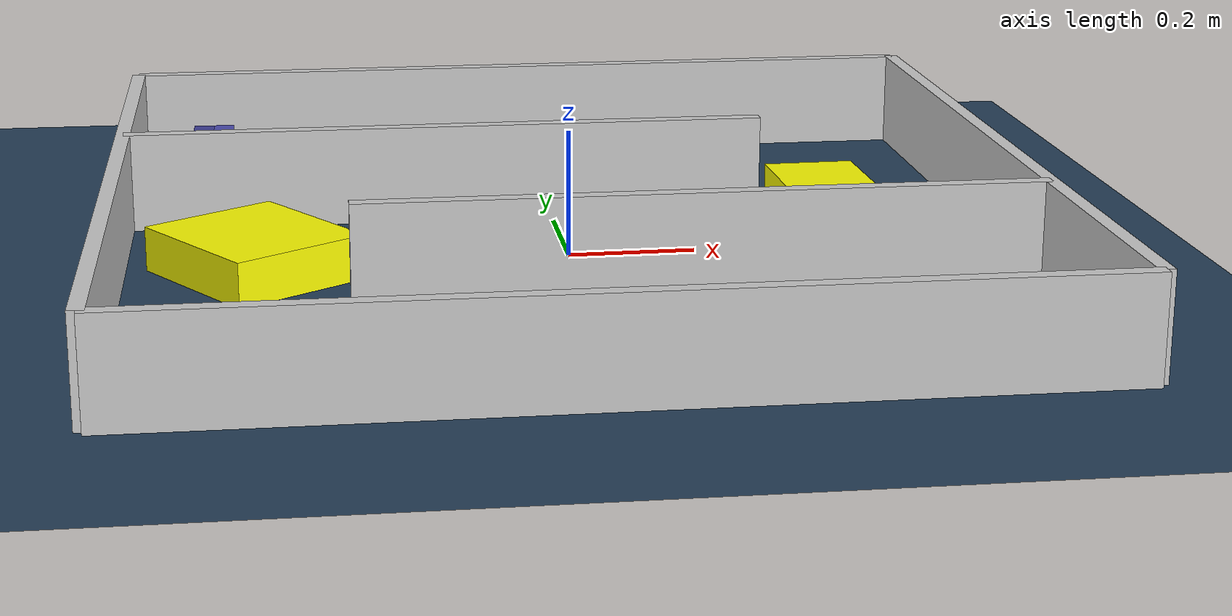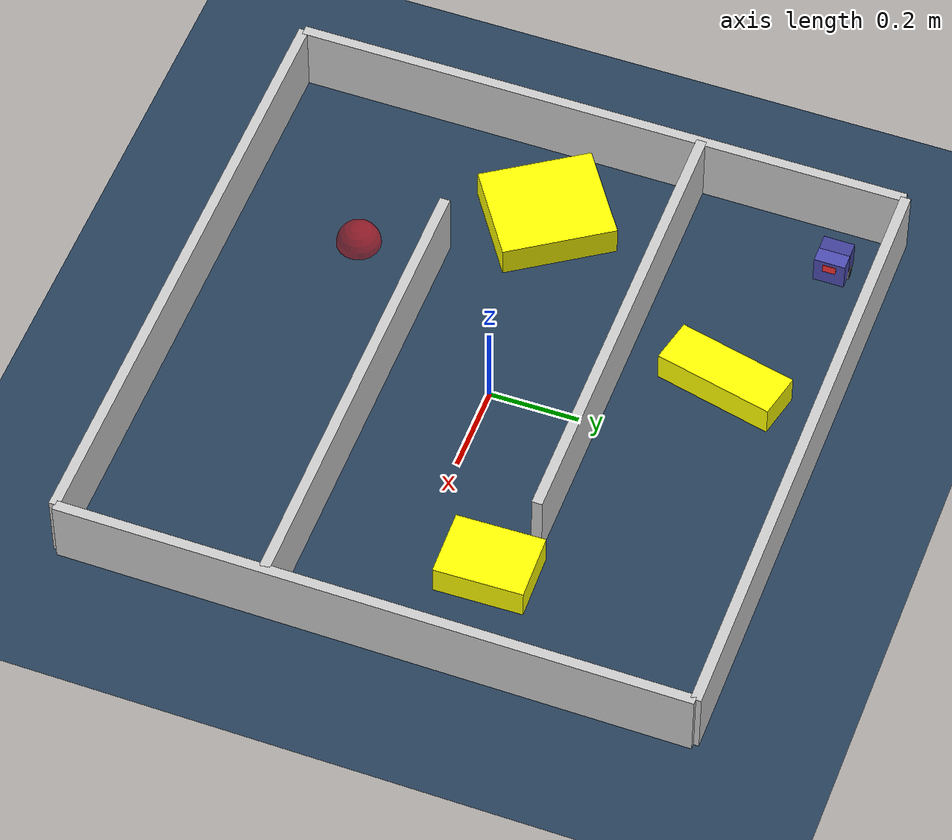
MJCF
<?xml version='1.0' encoding='utf-8'?>
<mujoco model="generated_environment">
  <option timestep="0.002" integrator="implicitfast" cone="elliptic" iterations="100" gravity="0 0 -9.81" />
  <default>
    <geom density="1" />
  </default>
  <asset>
    <texture builtin="gradient" height="3072" rgb1="0.3 0.5 0.7" rgb2="0 0 0" type="skybox" width="512" />
    <texture builtin="checker" height="300" mark="edge" markrgb="0.8 0.8 0.8" name="groundplane" rgb1="0.2 0.3 0.4" rgb2="0.1 0.2 0.3" type="2d" width="300" />
    <material name="groundplane" reflectance="0.2" texrepeat="5 5" texture="groundplane" texuniform="true" />
    <material name="robot" rgba="1.0 1.0 0.0 1.0" />
  </asset>
  <worldbody>
    <light dir="0 0 -1" directional="true" pos="0 0 1.5" />
    <geom condim="4" friction="0.5 0.005 0.001" material="groundplane" name="floor" size="0 0 0.05" type="plane" />
    <body name="walls">
      <geom name="wall_1" condim="4" pos="-0.699000 0.000000 0.080000" rgba="0.800000011920929 0.800000011920929 0.800000011920929 1.0" size="0.011650 0.699000 0.080000" type="box" />
      <geom name="wall_2" condim="4" pos="0.699000 0.000000 0.080000" rgba="0.800000011920929 0.800000011920929 0.800000011920929 1.0" size="0.011650 0.699000 0.080000" type="box" />
      <geom name="wall_3" condim="4" pos="0.000000 -0.699000 0.080000" rgba="0.800000011920929 0.800000011920929 0.800000011920929 1.0" size="0.699000 0.011650 0.080000" type="box" />
      <geom name="wall_4" condim="4" pos="0.000000 0.699000 0.080000" rgba="0.800000011920929 0.800000011920929 0.800000011920929 1.0" size="0.699000 0.011650 0.080000" type="box" />
      <geom name="wall_5" condim="4" pos="0.174750 -0.233000 0.080000" rgba="0.800000011920929 0.800000011920929 0.800000011920929 1.0" size="0.524250 0.011650 0.080000" type="box" />
      <geom name="wall_6" condim="4" pos="-0.174750 0.233000 0.080000" rgba="0.800000011920929 0.800000011920929 0.800000011920929 1.0" size="0.524250 0.011650 0.080000" type="box" />
    </body>
    <body name="car" pos="-0.5650000000000001 0.5850000000000001 0.010000">
      <freejoint name="car_freejoint" />
      <inertial pos="0.000000 0 0.037500" mass="0.350000" diaginertia="0.000266 0.000266 0.000286" />
      <geom name="front_chassis_collision" type="box" pos="0.017500 0 0.037500" size="0.017500 0.035000 0.032500" rgba="0.3 0.3 0.7 1" />
      <geom name="rear_chassis_collision" type="box" pos="-0.017500 0 0.037500" size="0.017500 0.035000 0.032500" rgba="0.25 0.25 0.6 1" />
      <geom name="front_marker" type="box" pos="0.034000 0 0.050500" size="0.002000 0.015000 0.010000" rgba="1.0 0.2 0.2 1" contype="0" conaffinity="0" />
      <body name="rear_support_body" pos="-0.030000 0.000000 0.002500">
        <joint name="rear_caster_joint" type="ball" damping="0.0001" />
        <inertial pos="0 0 0" mass="0.025000" diaginertia="0.000001 0.000001 0.000001" />
        <geom name="rear_support" type="sphere" pos="0 0 0" size="0.002500" friction="0.000000 0.000000 0.000000" rgba="0.7 0.1 0.1 1" />
      </body>
      <body name="front_support_body" pos="0.030000 0.000000 0.002500">
        <joint name="front_caster_joint" type="ball" damping="0.0001" />
        <inertial pos="0 0 0" mass="0.025000" diaginertia="0.000001 0.000001 0.000001" />
        <geom name="front_support" type="sphere" pos="0 0 0" size="0.002500" friction="0.000000 0.000000 0.000000" rgba="0.1 0.7 0.1 1" />
      </body>
      <body name="left_wheel" pos="0.000000 0.037500 0.015000">
        <inertial pos="0 0 0" mass="0.050000" diaginertia="0.000003 0.000006 0.000003" />
        <joint name="left_wheel_joint" type="hinge" axis="0 1 0" />
        <geom name="left_wheel_collision" type="cylinder" size="0.015000 0.000500" euler="90 0 0" rgba="0.1 0.1 0.1 1" />
      </body>
      <body name="right_wheel" pos="0.000000 -0.037500 0.015000">
        <inertial pos="0 0 0" mass="0.050000" diaginertia="0.000003 0.000006 0.000003" />
        <joint name="right_wheel_joint" type="hinge" axis="0 1 0" />
        <geom name="right_wheel_collision" type="cylinder" size="0.015000 0.000500" euler="90 0 0" rgba="0.1 0.1 0.1 1" />
      </body>
    </body>
    <body name="obstacle_0_movable">
      <geom name="obstacle_0_movable" condim="4" pos="0.4451375966093212 0.16412588374223114 0.035" euler="0 0 1.4824898165616673" friction="0.0 0.005 0.001" rgba="1 1 0 1" size="0.07471700416588907 0.09894075085907661 0.035" type="box" mass="0.1" />
      <joint type="free" />
    </body>
    <body name="obstacle_1_movable">
      <geom name="obstacle_1_movable" condim="4" pos="-0.4891086178558307 -0.04810580538860332 0.035" euler="0 0 124.09513905364102" friction="0.0 0.005 0.001" rgba="1 1 0 1" size="0.1286870962031593 0.11438573431869817 0.035" type="box" mass="0.1" />
      <joint type="free" />
    </body>
    <body name="obstacle_2_movable">
      <geom name="obstacle_2_movable" condim="4" pos="-0.18926147410623706 0.4640387845716345 0.035" euler="0 0 256.81577551860227" friction="0.0 0.005 0.001" rgba="1 1 0 1" size="0.13670707134730858 0.05145906761120639 0.035" type="box" mass="0.1" />
      <joint type="free" />
    </body>
    <site name="goal" type="sphere" pos="-0.2949999999999998 -0.4149999999999999 0.0" size="0.05" rgba="1 0 0 0.5" />
  </worldbody>
  <actuator>
    <velocity name="left_wheel_drive" joint="left_wheel_joint" ctrlrange="-25.000000 25.000000" kv="0.750000" forcerange="-0.300000 0.300000" />
    <velocity name="right_wheel_drive" joint="right_wheel_joint" ctrlrange="-25.000000 25.000000" kv="0.750000" forcerange="-0.300000 0.300000" />
  </actuator>
</mujoco>
